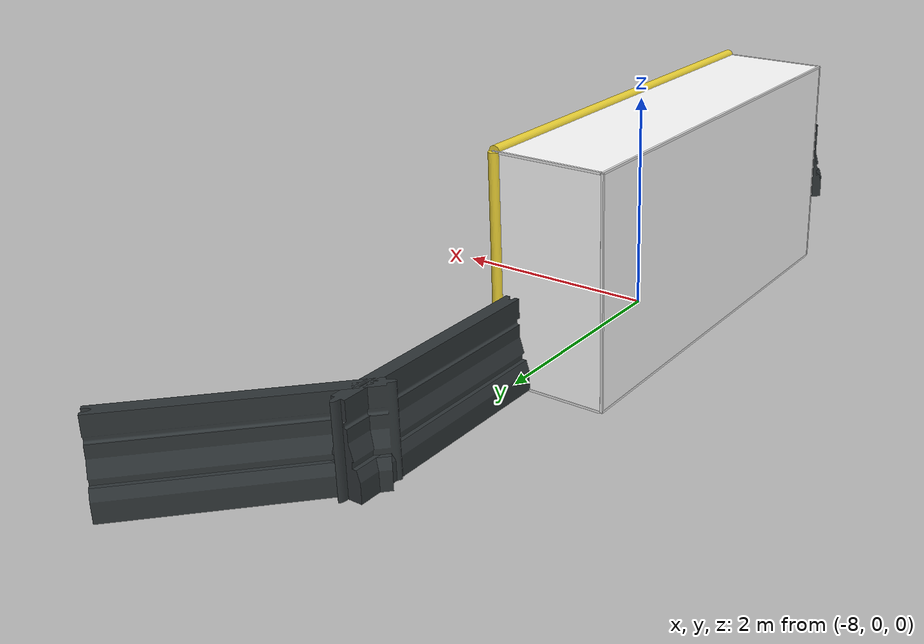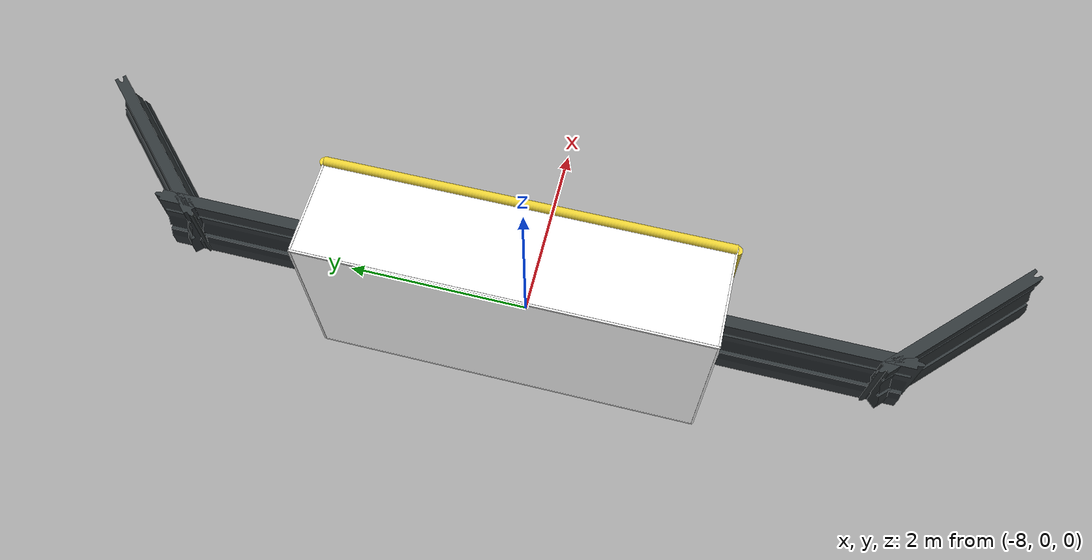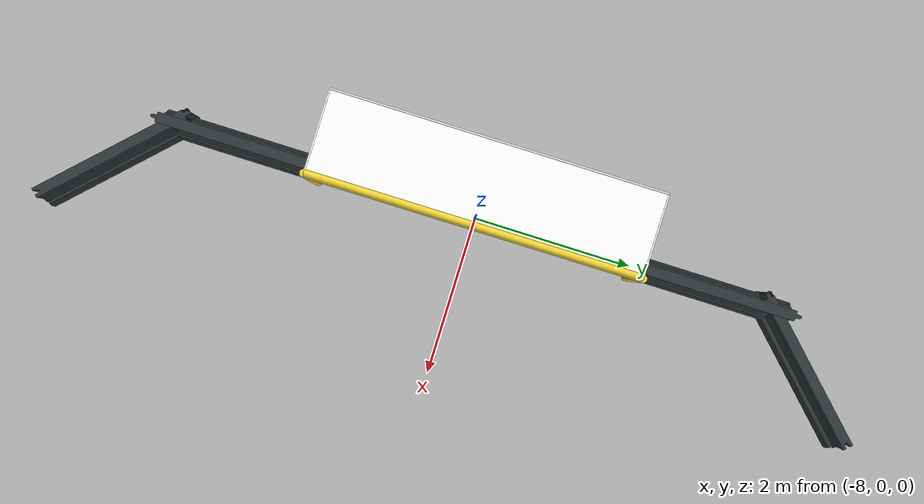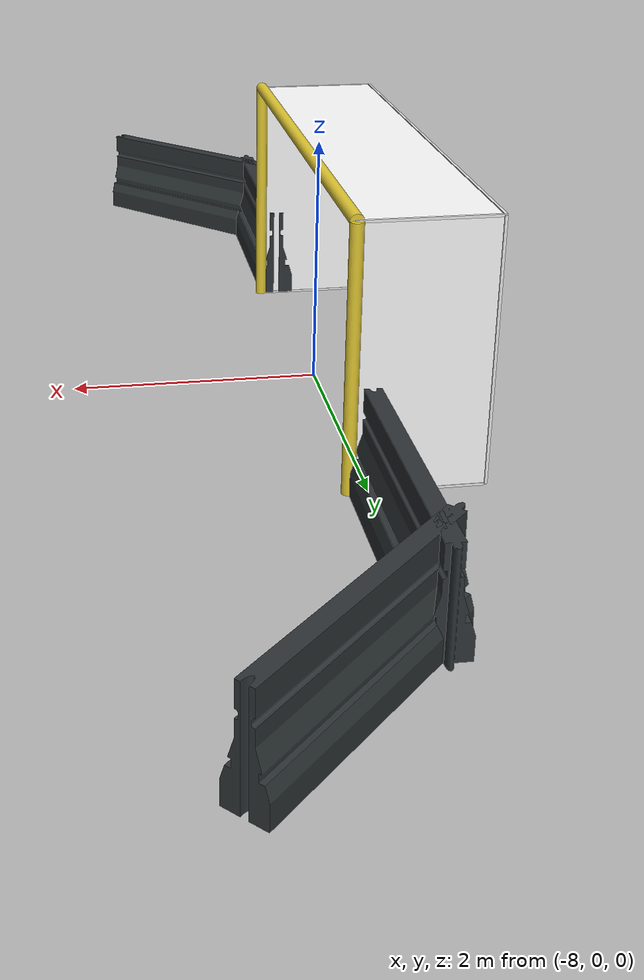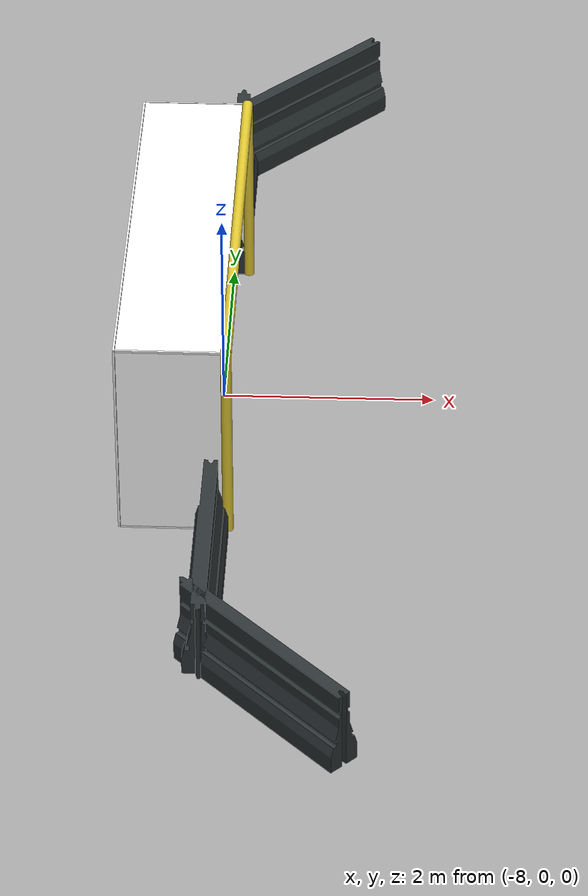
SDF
<sdf version="1.7">
 <model name="Soccer_Field_walls">
  <model name="Barrier_clone">
   <link name="link">
    <inertial>
     <mass>1</mass>
     <inertia><ixx>1</ixx><ixy>0</ixy><ixz>0</ixz><iyy>1</iyy><iyz>0</iyz><izz>1</izz></inertia>
    </inertial>
    <visual name="visual">
     <geometry>
      <mesh>
       <uri>model://drc_practice_orange_jersey_barrier/meshes/jersey_barrier.dae</uri>
       <scale>0.5 1.15 0.75</scale>
      </mesh>
     </geometry>
     <material>
      <shader type="pixel"><normal_map>__default__</normal_map></shader>
      <script><name>ModelPreview_8::link::visual_MATERIAL_</name><uri>__default__</uri></script>
      <ambient>0.533 0.541 0.522 1</ambient>
      <diffuse>0.18 0.204 0.212 1</diffuse>
      <specular>0 0 0 1</specular>
      <emissive>0 0 0 1</emissive>
     </material>
    </visual>
    <collision name="collision">
     <geometry>
      <mesh>
       <uri>/home/llyttle/.gazebo/models/drc_practice_orange_jersey_barrier/meshes/jersey_barrier.dae</uri>
       <scale>0.5 1.15 0.75</scale>
      </mesh>
     </geometry>
     <surface>
      <friction>
       <ode><mu>1</mu><mu2>1</mu2><fdir1>0 0 0</fdir1><slip1>0</slip1><slip2>0</slip2></ode>
       <torsional>
        <coefficient>1</coefficient>
        <patch_radius>0</patch_radius>
        <surface_radius>0</surface_radius>
        <use_patch_radius>1</use_patch_radius>
        <ode><slip>0</slip></ode>
       </torsional>
      </friction>
      <bounce><restitution_coefficient>0</restitution_coefficient><threshold>1e+06</threshold></bounce>
      <contact>
       <collide_without_contact>0</collide_without_contact>
       <collide_without_contact_bitmask>1</collide_without_contact_bitmask>
       <collide_bitmask>1</collide_bitmask>
       <ode>
        <soft_cfm>0</soft_cfm>
        <soft_erp>0.2</soft_erp>
        <kp>1e+13</kp>
        <kd>1</kd>
        <max_vel>0.01</max_vel>
        <min_depth>0</min_depth>
       </ode>
       <bullet>
        <split_impulse>1</split_impulse>
        <split_impulse_penetration_threshold>-0.01</split_impulse_penetration_threshold>
        <soft_cfm>0</soft_cfm>
        <soft_erp>0.2</soft_erp>
        <kp>1e+13</kp>
        <kd>1</kd>
       </bullet>
      </contact>
     </surface>
    </collision>
   </link>
   <static>1</static>
   <pose>-8.00458 -2.99605 0 0 -0 0</pose>
  </model>
  <model name="Barrier_clone_clone_0">
   <link name="link">
    <inertial>
     <mass>1</mass>
     <inertia><ixx>1</ixx><ixy>0</ixy><ixz>0</ixz><iyy>1</iyy><iyz>0</iyz><izz>1</izz></inertia>
    </inertial>
    <visual name="visual">
     <geometry>
      <mesh>
       <uri>model://drc_practice_orange_jersey_barrier/meshes/jersey_barrier.dae</uri>
       <scale>0.5 1.15 0.75</scale>
      </mesh>
     </geometry>
     <material>
      <shader type="pixel"><normal_map>__default__</normal_map></shader>
      <script><name>ModelPreview_8::link::visual_MATERIAL_</name><uri>__default__</uri></script>
      <ambient>0.533 0.541 0.522 1</ambient>
      <diffuse>0.18 0.204 0.212 1</diffuse>
      <specular>0 0 0 1</specular>
      <emissive>0 0 0 1</emissive>
     </material>
    </visual>
    <collision name="collision">
     <geometry>
      <mesh>
       <uri>/home/llyttle/.gazebo/models/drc_practice_orange_jersey_barrier/meshes/jersey_barrier.dae</uri>
       <scale>0.5 1.15 0.75</scale>
      </mesh>
     </geometry>
     <surface>
      <friction>
       <ode><mu>1</mu><mu2>1</mu2><fdir1>0 0 0</fdir1><slip1>0</slip1><slip2>0</slip2></ode>
       <torsional>
        <coefficient>1</coefficient>
        <patch_radius>0</patch_radius>
        <surface_radius>0</surface_radius>
        <use_patch_radius>1</use_patch_radius>
        <ode><slip>0</slip></ode>
       </torsional>
      </friction>
      <bounce><restitution_coefficient>0</restitution_coefficient><threshold>1e+06</threshold></bounce>
      <contact>
       <collide_without_contact>0</collide_without_contact>
       <collide_without_contact_bitmask>1</collide_without_contact_bitmask>
       <collide_bitmask>1</collide_bitmask>
       <ode>
        <soft_cfm>0</soft_cfm>
        <soft_erp>0.2</soft_erp>
        <kp>1e+13</kp>
        <kd>1</kd>
        <max_vel>0.01</max_vel>
        <min_depth>0</min_depth>
       </ode>
       <bullet>
        <split_impulse>1</split_impulse>
        <split_impulse_penetration_threshold>-0.01</split_impulse_penetration_threshold>
        <soft_cfm>0</soft_cfm>
        <soft_erp>0.2</soft_erp>
        <kp>1e+13</kp>
        <kd>1</kd>
       </bullet>
      </contact>
     </surface>
    </collision>
   </link>
   <static>1</static>
   <pose>-8.00458 3.00395 0 0 0 -3.14159</pose>
  </model>
  <model name="Barrier_clone_clone_clone_14">
   <link name="link">
    <inertial>
     <mass>1</mass>
     <inertia><ixx>1</ixx><ixy>0</ixy><ixz>0</ixz><iyy>1</iyy><iyz>0</iyz><izz>1</izz></inertia>
    </inertial>
    <visual name="visual">
     <geometry>
      <mesh>
       <uri>model://drc_practice_orange_jersey_barrier/meshes/jersey_barrier.dae</uri>
       <scale>0.5 1.15 0.75</scale>
      </mesh>
     </geometry>
     <material>
      <shader type="pixel"><normal_map>__default__</normal_map></shader>
      <script><name>ModelPreview_8::link::visual_MATERIAL_</name><uri>__default__</uri></script>
      <ambient>0.533 0.541 0.522 1</ambient>
      <diffuse>0.18 0.204 0.212 1</diffuse>
      <specular>0 0 0 1</specular>
      <emissive>0 0 0 1</emissive>
     </material>
    </visual>
    <collision name="collision">
     <geometry>
      <mesh>
       <uri>/home/llyttle/.gazebo/models/drc_practice_orange_jersey_barrier/meshes/jersey_barrier.dae</uri>
       <scale>0.5 1.15 0.75</scale>
      </mesh>
     </geometry>
     <surface>
      <friction>
       <ode><mu>1</mu><mu2>1</mu2><fdir1>0 0 0</fdir1><slip1>0</slip1><slip2>0</slip2></ode>
       <torsional>
        <coefficient>1</coefficient>
        <patch_radius>0</patch_radius>
        <surface_radius>0</surface_radius>
        <use_patch_radius>1</use_patch_radius>
        <ode><slip>0</slip></ode>
       </torsional>
      </friction>
      <bounce><restitution_coefficient>0</restitution_coefficient><threshold>1e+06</threshold></bounce>
      <contact>
       <collide_without_contact>0</collide_without_contact>
       <collide_without_contact_bitmask>1</collide_without_contact_bitmask>
       <collide_bitmask>1</collide_bitmask>
       <ode>
        <soft_cfm>0</soft_cfm>
        <soft_erp>0.2</soft_erp>
        <kp>1e+13</kp>
        <kd>1</kd>
        <max_vel>0.01</max_vel>
        <min_depth>0</min_depth>
       </ode>
       <bullet>
        <split_impulse>1</split_impulse>
        <split_impulse_penetration_threshold>-0.01</split_impulse_penetration_threshold>
        <soft_cfm>0</soft_cfm>
        <soft_erp>0.2</soft_erp>
        <kp>1e+13</kp>
        <kd>1</kd>
       </bullet>
      </contact>
     </surface>
    </collision>
   </link>
   <static>1</static>
   <pose>-7.39817 4.37062 0 0 0 -0.785402</pose>
  </model>
  <model name="Barrier_clone_clone_clone_15">
   <link name="link">
    <inertial>
     <mass>1</mass>
     <inertia><ixx>1</ixx><ixy>0</ixy><ixz>0</ixz><iyy>1</iyy><iyz>0</iyz><izz>1</izz></inertia>
    </inertial>
    <visual name="visual">
     <geometry>
      <mesh>
       <uri>model://drc_practice_orange_jersey_barrier/meshes/jersey_barrier.dae</uri>
       <scale>0.5 1.15 0.75</scale>
      </mesh>
     </geometry>
     <material>
      <shader type="pixel"><normal_map>__default__</normal_map></shader>
      <script><name>ModelPreview_8::link::visual_MATERIAL_</name><uri>__default__</uri></script>
      <ambient>0.533 0.541 0.522 1</ambient>
      <diffuse>0.18 0.204 0.212 1</diffuse>
      <specular>0 0 0 1</specular>
      <emissive>0 0 0 1</emissive>
     </material>
    </visual>
    <collision name="collision">
     <geometry>
      <mesh>
       <uri>/home/llyttle/.gazebo/models/drc_practice_orange_jersey_barrier/meshes/jersey_barrier.dae</uri>
       <scale>0.5 1.15 0.75</scale>
      </mesh>
     </geometry>
     <surface>
      <friction>
       <ode><mu>1</mu><mu2>1</mu2><fdir1>0 0 0</fdir1><slip1>0</slip1><slip2>0</slip2></ode>
       <torsional>
        <coefficient>1</coefficient>
        <patch_radius>0</patch_radius>
        <surface_radius>0</surface_radius>
        <use_patch_radius>1</use_patch_radius>
        <ode><slip>0</slip></ode>
       </torsional>
      </friction>
      <bounce><restitution_coefficient>0</restitution_coefficient><threshold>1e+06</threshold></bounce>
      <contact>
       <collide_without_contact>0</collide_without_contact>
       <collide_without_contact_bitmask>1</collide_without_contact_bitmask>
       <collide_bitmask>1</collide_bitmask>
       <ode>
        <soft_cfm>0</soft_cfm>
        <soft_erp>0.2</soft_erp>
        <kp>1e+13</kp>
        <kd>1</kd>
        <max_vel>0.01</max_vel>
        <min_depth>0</min_depth>
       </ode>
       <bullet>
        <split_impulse>1</split_impulse>
        <split_impulse_penetration_threshold>-0.01</split_impulse_penetration_threshold>
        <soft_cfm>0</soft_cfm>
        <soft_erp>0.2</soft_erp>
        <kp>1e+13</kp>
        <kd>1</kd>
       </bullet>
      </contact>
     </surface>
    </collision>
   </link>
   <static>1</static>
   <pose>-7.41593 -4.4198 0 0 0 -2.3562</pose>
  </model>
  <model name="Goal_clone">
   <link name="left_post">
    <pose>-0.086533 2 1 0 -0 0</pose>
    <inertial>
     <mass>1</mass>
     <inertia><ixx>1</ixx><ixy>0</ixy><ixz>0</ixz><iyy>1</iyy><iyz>0</iyz><izz>1</izz></inertia>
    </inertial>
    <visual name="visual">
     <geometry><cylinder><radius>0.05</radius><length>2</length></cylinder></geometry>
     <material>
      <script><uri>file://media/materials/scripts/gazebo.material</uri><name>Gazebo/ZincYellow</name></script>
      <shader type="pixel"><normal_map>__default__</normal_map></shader>
      <ambient>0.973 0.953 0.208 1</ambient>
      <diffuse>0.973 0.953 0.208 1</diffuse>
      <specular>0.973 0.953 0.208 1</specular>
      <emissive>0 0 0 1</emissive>
     </material>
    </visual>
    <collision name="collision">
     <geometry><cylinder><radius>0.05</radius><length>2</length></cylinder></geometry>
     <surface>
      <friction>
       <ode><mu>1</mu><mu2>1</mu2><fdir1>0 0 0</fdir1><slip1>0</slip1><slip2>0</slip2></ode>
       <torsional>
        <coefficient>1</coefficient>
        <patch_radius>0</patch_radius>
        <surface_radius>0</surface_radius>
        <use_patch_radius>1</use_patch_radius>
        <ode><slip>0</slip></ode>
       </torsional>
      </friction>
      <bounce><restitution_coefficient>0</restitution_coefficient><threshold>1e+06</threshold></bounce>
      <contact>
       <collide_without_contact>0</collide_without_contact>
       <collide_without_contact_bitmask>1</collide_without_contact_bitmask>
       <collide_bitmask>1</collide_bitmask>
       <ode>
        <soft_cfm>0</soft_cfm>
        <soft_erp>0.2</soft_erp>
        <kp>1e+13</kp>
        <kd>1</kd>
        <max_vel>0.01</max_vel>
        <min_depth>0</min_depth>
       </ode>
       <bullet>
        <split_impulse>1</split_impulse>
        <split_impulse_penetration_threshold>-0.01</split_impulse_penetration_threshold>
        <soft_cfm>0</soft_cfm>
        <soft_erp>0.2</soft_erp>
        <kp>1e+13</kp>
        <kd>1</kd>
       </bullet>
      </contact>
     </surface>
    </collision>
   </link>
   <link name="center_net">
    <pose>0.913467 0 1 0 -0 0</pose>
    <inertial>
     <mass>1</mass>
     <inertia><ixx>1</ixx><ixy>0</ixy><ixz>0</ixz><iyy>1</iyy><iyz>0</iyz><izz>1</izz></inertia>
    </inertial>
    <visual name="visual">
     <geometry><box><size>0.01 4 2</size></box></geometry>
     <material>
      <script>
       <uri>model://robocup09_spl_field/materials/scripts/</uri>
       <uri>model://robocup09_spl_field/materials/textures/</uri>
       <name>RoboCup/Net</name>
      </script>
      <shader type="pixel"><normal_map>__default__</normal_map></shader>
      <ambient>1 1 1 1</ambient>
      <diffuse>1 1 1 1</diffuse>
      <specular>0 0 0 1</specular>
      <emissive>0 0 0 1</emissive>
     </material>
    </visual>
    <collision name="collision">
     <geometry><box><size>0.01 4 2</size></box></geometry>
     <surface>
      <friction>
       <ode><mu>1</mu><mu2>1</mu2><fdir1>0 0 0</fdir1><slip1>0</slip1><slip2>0</slip2></ode>
       <torsional>
        <coefficient>1</coefficient>
        <patch_radius>0</patch_radius>
        <surface_radius>0</surface_radius>
        <use_patch_radius>1</use_patch_radius>
        <ode><slip>0</slip></ode>
       </torsional>
      </friction>
      <bounce><restitution_coefficient>0</restitution_coefficient><threshold>1e+06</threshold></bounce>
      <contact>
       <collide_without_contact>0</collide_without_contact>
       <collide_without_contact_bitmask>1</collide_without_contact_bitmask>
       <collide_bitmask>1</collide_bitmask>
       <ode>
        <soft_cfm>0</soft_cfm>
        <soft_erp>0.2</soft_erp>
        <kp>1e+13</kp>
        <kd>1</kd>
        <max_vel>0.01</max_vel>
        <min_depth>0</min_depth>
       </ode>
       <bullet>
        <split_impulse>1</split_impulse>
        <split_impulse_penetration_threshold>-0.01</split_impulse_penetration_threshold>
        <soft_cfm>0</soft_cfm>
        <soft_erp>0.2</soft_erp>
        <kp>1e+13</kp>
        <kd>1</kd>
       </bullet>
      </contact>
     </surface>
    </collision>
   </link>
   <link name="center_support_horiz_upper">
    <pose>0.913467 0 2 3.14159 1.57079 3.14159</pose>
    <inertial>
     <mass>1</mass>
     <inertia><ixx>1</ixx><ixy>0</ixy><ixz>0</ixz><iyy>1</iyy><iyz>0</iyz><izz>1</izz></inertia>
    </inertial>
    <visual name="visual">
     <geometry><box><size>0.02 4 0.02</size></box></geometry>
     <material>
      <script><uri>file://media/materials/scripts/gazebo.material</uri><name>Gazebo/White</name></script>
      <shader type="pixel"><normal_map>__default__</normal_map></shader>
      <ambient>1 1 1 1</ambient>
      <diffuse>1 1 1 1</diffuse>
      <specular>0 0 0 1</specular>
      <emissive>0 0 0 1</emissive>
     </material>
    </visual>
    <collision name="collision">
     <geometry><box><size>0.02 4 0.02</size></box></geometry>
     <surface>
      <friction>
       <ode><mu>1</mu><mu2>1</mu2><fdir1>0 0 0</fdir1><slip1>0</slip1><slip2>0</slip2></ode>
       <torsional>
        <coefficient>1</coefficient>
        <patch_radius>0</patch_radius>
        <surface_radius>0</surface_radius>
        <use_patch_radius>1</use_patch_radius>
        <ode><slip>0</slip></ode>
       </torsional>
      </friction>
      <bounce><restitution_coefficient>0</restitution_coefficient><threshold>1e+06</threshold></bounce>
      <contact>
       <collide_without_contact>0</collide_without_contact>
       <collide_without_contact_bitmask>1</collide_without_contact_bitmask>
       <collide_bitmask>1</collide_bitmask>
       <ode>
        <soft_cfm>0</soft_cfm>
        <soft_erp>0.2</soft_erp>
        <kp>1e+13</kp>
        <kd>1</kd>
        <max_vel>0.01</max_vel>
        <min_depth>0</min_depth>
       </ode>
       <bullet>
        <split_impulse>1</split_impulse>
        <split_impulse_penetration_threshold>-0.01</split_impulse_penetration_threshold>
        <soft_cfm>0</soft_cfm>
        <soft_erp>0.2</soft_erp>
        <kp>1e+13</kp>
        <kd>1</kd>
       </bullet>
      </contact>
     </surface>
    </collision>
   </link>
   <link name="center_support_horiz_upper_clone">
    <pose>0.913467 0 0 3.14159 1.57079 3.14159</pose>
    <inertial>
     <mass>1</mass>
     <inertia><ixx>1</ixx><ixy>0</ixy><ixz>0</ixz><iyy>1</iyy><iyz>0</iyz><izz>1</izz></inertia>
    </inertial>
    <visual name="visual">
     <geometry><box><size>0.02 4 0.02</size></box></geometry>
     <material>
      <script><uri>file://media/materials/scripts/gazebo.material</uri><name>Gazebo/White</name></script>
      <shader type="pixel"><normal_map>__default__</normal_map></shader>
      <ambient>1 1 1 1</ambient>
      <diffuse>1 1 1 1</diffuse>
      <specular>0 0 0 1</specular>
      <emissive>0 0 0 1</emissive>
     </material>
    </visual>
    <collision name="collision">
     <geometry><box><size>0.02 4 0.02</size></box></geometry>
     <surface>
      <friction>
       <ode><mu>1</mu><mu2>1</mu2><fdir1>0 0 0</fdir1><slip1>0</slip1><slip2>0</slip2></ode>
       <torsional>
        <coefficient>1</coefficient>
        <patch_radius>0</patch_radius>
        <surface_radius>0</surface_radius>
        <use_patch_radius>1</use_patch_radius>
        <ode><slip>0</slip></ode>
       </torsional>
      </friction>
      <bounce><restitution_coefficient>0</restitution_coefficient><threshold>1e+06</threshold></bounce>
      <contact>
       <collide_without_contact>0</collide_without_contact>
       <collide_without_contact_bitmask>1</collide_without_contact_bitmask>
       <collide_bitmask>1</collide_bitmask>
       <ode>
        <soft_cfm>0</soft_cfm>
        <soft_erp>0.2</soft_erp>
        <kp>1e+13</kp>
        <kd>1</kd>
        <max_vel>0.01</max_vel>
        <min_depth>0</min_depth>
       </ode>
       <bullet>
        <split_impulse>1</split_impulse>
        <split_impulse_penetration_threshold>-0.01</split_impulse_penetration_threshold>
        <soft_cfm>0</soft_cfm>
        <soft_erp>0.2</soft_erp>
        <kp>1e+13</kp>
        <kd>1</kd>
       </bullet>
      </contact>
     </surface>
    </collision>
   </link>
   <link name="crossbar">
    <pose>-0.086533 0 2 1.56998 1.57 -9e-06</pose>
    <inertial>
     <mass>1</mass>
     <inertia><ixx>1</ixx><ixy>0</ixy><ixz>0</ixz><iyy>1</iyy><iyz>0</iyz><izz>1</izz></inertia>
    </inertial>
    <visual name="visual">
     <geometry><cylinder><radius>0.05</radius><length>4</length></cylinder></geometry>
     <material>
      <script><uri>file://media/materials/scripts/gazebo.material</uri><name>Gazebo/ZincYellow</name></script>
      <shader type="pixel"><normal_map>__default__</normal_map></shader>
      <ambient>0.973 0.973 0.973 1</ambient>
      <diffuse>0.973 0.973 0.973 1</diffuse>
      <specular>0.973 0.973 0.973 1</specular>
      <emissive>0 0 0 1</emissive>
     </material>
    </visual>
    <collision name="collision">
     <geometry><cylinder><radius>0.05</radius><length>4</length></cylinder></geometry>
     <surface>
      <friction>
       <ode><mu>1</mu><mu2>1</mu2><fdir1>0 0 0</fdir1><slip1>0</slip1><slip2>0</slip2></ode>
       <torsional>
        <coefficient>1</coefficient>
        <patch_radius>0</patch_radius>
        <surface_radius>0</surface_radius>
        <use_patch_radius>1</use_patch_radius>
        <ode><slip>0</slip></ode>
       </torsional>
      </friction>
      <bounce><restitution_coefficient>0</restitution_coefficient><threshold>1e+06</threshold></bounce>
      <contact>
       <collide_without_contact>0</collide_without_contact>
       <collide_without_contact_bitmask>1</collide_without_contact_bitmask>
       <collide_bitmask>1</collide_bitmask>
       <ode>
        <soft_cfm>0</soft_cfm>
        <soft_erp>0.2</soft_erp>
        <kp>1e+13</kp>
        <kd>1</kd>
        <max_vel>0.01</max_vel>
        <min_depth>0</min_depth>
       </ode>
       <bullet>
        <split_impulse>1</split_impulse>
        <split_impulse_penetration_threshold>-0.01</split_impulse_penetration_threshold>
        <soft_cfm>0</soft_cfm>
        <soft_erp>0.2</soft_erp>
        <kp>1e+13</kp>
        <kd>1</kd>
       </bullet>
      </contact>
     </surface>
    </collision>
   </link>
   <link name="left_support_horiz_lower">
    <pose>0.4 2 0 0 -0 0</pose>
    <inertial>
     <mass>1</mass>
     <inertia><ixx>1</ixx><ixy>0</ixy><ixz>0</ixz><iyy>1</iyy><iyz>0</iyz><izz>1</izz></inertia>
    </inertial>
    <visual name="visual">
     <geometry><box><size>1 0.02 0.02</size></box></geometry>
     <material>
      <script><uri>file://media/materials/scripts/gazebo.material</uri><name>Gazebo/White</name></script>
      <shader type="pixel"><normal_map>__default__</normal_map></shader>
      <ambient>1 1 1 1</ambient>
      <diffuse>1 1 1 1</diffuse>
      <specular>0 0 0 1</specular>
      <emissive>0 0 0 1</emissive>
     </material>
    </visual>
    <collision name="collision">
     <geometry><box><size>1 0.02 0.02</size></box></geometry>
     <surface>
      <friction>
       <ode><mu>1</mu><mu2>1</mu2><fdir1>0 0 0</fdir1><slip1>0</slip1><slip2>0</slip2></ode>
       <torsional>
        <coefficient>1</coefficient>
        <patch_radius>0</patch_radius>
        <surface_radius>0</surface_radius>
        <use_patch_radius>1</use_patch_radius>
        <ode><slip>0</slip></ode>
       </torsional>
      </friction>
      <bounce><restitution_coefficient>0</restitution_coefficient><threshold>1e+06</threshold></bounce>
      <contact>
       <collide_without_contact>0</collide_without_contact>
       <collide_without_contact_bitmask>1</collide_without_contact_bitmask>
       <collide_bitmask>1</collide_bitmask>
       <ode>
        <soft_cfm>0</soft_cfm>
        <soft_erp>0.2</soft_erp>
        <kp>1e+13</kp>
        <kd>1</kd>
        <max_vel>0.01</max_vel>
        <min_depth>0</min_depth>
       </ode>
       <bullet>
        <split_impulse>1</split_impulse>
        <split_impulse_penetration_threshold>-0.01</split_impulse_penetration_threshold>
        <soft_cfm>0</soft_cfm>
        <soft_erp>0.2</soft_erp>
        <kp>1e+13</kp>
        <kd>1</kd>
       </bullet>
      </contact>
     </surface>
    </collision>
   </link>
   <link name="left_support_horiz_lower_clone">
    <pose>0.4 2 2 0 -0 0</pose>
    <inertial>
     <mass>1</mass>
     <inertia><ixx>1</ixx><ixy>0</ixy><ixz>0</ixz><iyy>1</iyy><iyz>0</iyz><izz>1</izz></inertia>
    </inertial>
    <visual name="visual">
     <geometry><box><size>1 0.02 0.02</size></box></geometry>
     <material>
      <script><uri>file://media/materials/scripts/gazebo.material</uri><name>Gazebo/White</name></script>
      <shader type="pixel"><normal_map>__default__</normal_map></shader>
      <ambient>1 1 1 1</ambient>
      <diffuse>1 1 1 1</diffuse>
      <specular>0 0 0 1</specular>
      <emissive>0 0 0 1</emissive>
     </material>
    </visual>
    <collision name="collision">
     <geometry><box><size>1 0.02 0.02</size></box></geometry>
     <surface>
      <friction>
       <ode><mu>1</mu><mu2>1</mu2><fdir1>0 0 0</fdir1><slip1>0</slip1><slip2>0</slip2></ode>
       <torsional>
        <coefficient>1</coefficient>
        <patch_radius>0</patch_radius>
        <surface_radius>0</surface_radius>
        <use_patch_radius>1</use_patch_radius>
        <ode><slip>0</slip></ode>
       </torsional>
      </friction>
      <bounce><restitution_coefficient>0</restitution_coefficient><threshold>1e+06</threshold></bounce>
      <contact>
       <collide_without_contact>0</collide_without_contact>
       <collide_without_contact_bitmask>1</collide_without_contact_bitmask>
       <collide_bitmask>1</collide_bitmask>
       <ode>
        <soft_cfm>0</soft_cfm>
        <soft_erp>0.2</soft_erp>
        <kp>1e+13</kp>
        <kd>1</kd>
        <max_vel>0.01</max_vel>
        <min_depth>0</min_depth>
       </ode>
       <bullet>
        <split_impulse>1</split_impulse>
        <split_impulse_penetration_threshold>-0.01</split_impulse_penetration_threshold>
        <soft_cfm>0</soft_cfm>
        <soft_erp>0.2</soft_erp>
        <kp>1e+13</kp>
        <kd>1</kd>
       </bullet>
      </contact>
     </surface>
    </collision>
   </link>
   <link name="left_support_horiz_lower_clone_0">
    <pose>0.4 -2 2 0 -0 0</pose>
    <inertial>
     <mass>1</mass>
     <inertia><ixx>1</ixx><ixy>0</ixy><ixz>0</ixz><iyy>1</iyy><iyz>0</iyz><izz>1</izz></inertia>
    </inertial>
    <visual name="visual">
     <geometry><box><size>1 0.02 0.02</size></box></geometry>
     <material>
      <script><uri>file://media/materials/scripts/gazebo.material</uri><name>Gazebo/White</name></script>
      <shader type="pixel"><normal_map>__default__</normal_map></shader>
      <ambient>1 1 1 1</ambient>
      <diffuse>1 1 1 1</diffuse>
      <specular>0 0 0 1</specular>
      <emissive>0 0 0 1</emissive>
     </material>
    </visual>
    <collision name="collision">
     <geometry><box><size>1 0.02 0.02</size></box></geometry>
     <surface>
      <friction>
       <ode><mu>1</mu><mu2>1</mu2><fdir1>0 0 0</fdir1><slip1>0</slip1><slip2>0</slip2></ode>
       <torsional>
        <coefficient>1</coefficient>
        <patch_radius>0</patch_radius>
        <surface_radius>0</surface_radius>
        <use_patch_radius>1</use_patch_radius>
        <ode><slip>0</slip></ode>
       </torsional>
      </friction>
      <bounce><restitution_coefficient>0</restitution_coefficient><threshold>1e+06</threshold></bounce>
      <contact>
       <collide_without_contact>0</collide_without_contact>
       <collide_without_contact_bitmask>1</collide_without_contact_bitmask>
       <collide_bitmask>1</collide_bitmask>
       <ode>
        <soft_cfm>0</soft_cfm>
        <soft_erp>0.2</soft_erp>
        <kp>1e+13</kp>
        <kd>1</kd>
        <max_vel>0.01</max_vel>
        <min_depth>0</min_depth>
       </ode>
       <bullet>
        <split_impulse>1</split_impulse>
        <split_impulse_penetration_threshold>-0.01</split_impulse_penetration_threshold>
        <soft_cfm>0</soft_cfm>
        <soft_erp>0.2</soft_erp>
        <kp>1e+13</kp>
        <kd>1</kd>
       </bullet>
      </contact>
     </surface>
    </collision>
   </link>
   <link name="left_support_horiz_lower_clone_1">
    <pose>0.4 -2 0 0 -0 0</pose>
    <inertial>
     <mass>1</mass>
     <inertia><ixx>1</ixx><ixy>0</ixy><ixz>0</ixz><iyy>1</iyy><iyz>0</iyz><izz>1</izz></inertia>
    </inertial>
    <visual name="visual">
     <geometry><box><size>1 0.02 0.02</size></box></geometry>
     <material>
      <script><uri>file://media/materials/scripts/gazebo.material</uri><name>Gazebo/White</name></script>
      <shader type="pixel"><normal_map>__default__</normal_map></shader>
      <ambient>1 1 1 1</ambient>
      <diffuse>1 1 1 1</diffuse>
      <specular>0 0 0 1</specular>
      <emissive>0 0 0 1</emissive>
     </material>
    </visual>
    <collision name="collision">
     <geometry><box><size>1 0.02 0.02</size></box></geometry>
     <surface>
      <friction>
       <ode><mu>1</mu><mu2>1</mu2><fdir1>0 0 0</fdir1><slip1>0</slip1><slip2>0</slip2></ode>
       <torsional>
        <coefficient>1</coefficient>
        <patch_radius>0</patch_radius>
        <surface_radius>0</surface_radius>
        <use_patch_radius>1</use_patch_radius>
        <ode><slip>0</slip></ode>
       </torsional>
      </friction>
      <bounce><restitution_coefficient>0</restitution_coefficient><threshold>1e+06</threshold></bounce>
      <contact>
       <collide_without_contact>0</collide_without_contact>
       <collide_without_contact_bitmask>1</collide_without_contact_bitmask>
       <collide_bitmask>1</collide_bitmask>
       <ode>
        <soft_cfm>0</soft_cfm>
        <soft_erp>0.2</soft_erp>
        <kp>1e+13</kp>
        <kd>1</kd>
        <max_vel>0.01</max_vel>
        <min_depth>0</min_depth>
       </ode>
       <bullet>
        <split_impulse>1</split_impulse>
        <split_impulse_penetration_threshold>-0.01</split_impulse_penetration_threshold>
        <soft_cfm>0</soft_cfm>
        <soft_erp>0.2</soft_erp>
        <kp>1e+13</kp>
        <kd>1</kd>
       </bullet>
      </contact>
     </surface>
    </collision>
   </link>
   <link name="right_net">
    <pose>0.4 -2 1 0 -0 0</pose>
    <inertial>
     <mass>1</mass>
     <inertia><ixx>1</ixx><ixy>0</ixy><ixz>0</ixz><iyy>1</iyy><iyz>0</iyz><izz>1</izz></inertia>
    </inertial>
    <visual name="visual">
     <geometry><box><size>1 0.01 2</size></box></geometry>
     <material>
      <script>
       <uri>model://robocup09_spl_field/materials/scripts/</uri>
       <uri>model://robocup09_spl_field/materials/textures/</uri>
       <name>RoboCup/Net</name>
      </script>
      <shader type="pixel"><normal_map>__default__</normal_map></shader>
      <ambient>1 1 1 1</ambient>
      <diffuse>1 1 1 1</diffuse>
      <specular>0 0 0 1</specular>
      <emissive>0 0 0 1</emissive>
     </material>
    </visual>
    <collision name="collision">
     <geometry><box><size>1 0.01 2</size></box></geometry>
     <surface>
      <friction>
       <ode><mu>1</mu><mu2>1</mu2><fdir1>0 0 0</fdir1><slip1>0</slip1><slip2>0</slip2></ode>
       <torsional>
        <coefficient>1</coefficient>
        <patch_radius>0</patch_radius>
        <surface_radius>0</surface_radius>
        <use_patch_radius>1</use_patch_radius>
        <ode><slip>0</slip></ode>
       </torsional>
      </friction>
      <bounce><restitution_coefficient>0</restitution_coefficient><threshold>1e+06</threshold></bounce>
      <contact>
       <collide_without_contact>0</collide_without_contact>
       <collide_without_contact_bitmask>1</collide_without_contact_bitmask>
       <collide_bitmask>1</collide_bitmask>
       <ode>
        <soft_cfm>0</soft_cfm>
        <soft_erp>0.2</soft_erp>
        <kp>1e+13</kp>
        <kd>1</kd>
        <max_vel>0.01</max_vel>
        <min_depth>0</min_depth>
       </ode>
       <bullet>
        <split_impulse>1</split_impulse>
        <split_impulse_penetration_threshold>-0.01</split_impulse_penetration_threshold>
        <soft_cfm>0</soft_cfm>
        <soft_erp>0.2</soft_erp>
        <kp>1e+13</kp>
        <kd>1</kd>
       </bullet>
      </contact>
     </surface>
    </collision>
   </link>
   <link name="right_net_clone">
    <pose>0.4 2 1 0 -0 0</pose>
    <inertial>
     <mass>1</mass>
     <inertia><ixx>1</ixx><ixy>0</ixy><ixz>0</ixz><iyy>1</iyy><iyz>0</iyz><izz>1</izz></inertia>
    </inertial>
    <visual name="visual">
     <geometry><box><size>1 0.01 2</size></box></geometry>
     <material>
      <script>
       <uri>model://robocup09_spl_field/materials/scripts/</uri>
       <uri>model://robocup09_spl_field/materials/textures/</uri>
       <name>RoboCup/Net</name>
      </script>
      <shader type="pixel"><normal_map>__default__</normal_map></shader>
      <ambient>1 1 1 1</ambient>
      <diffuse>1 1 1 1</diffuse>
      <specular>0 0 0 1</specular>
      <emissive>0 0 0 1</emissive>
     </material>
    </visual>
    <collision name="collision">
     <geometry><box><size>1 0.01 2</size></box></geometry>
     <surface>
      <friction>
       <ode><mu>1</mu><mu2>1</mu2><fdir1>0 0 0</fdir1><slip1>0</slip1><slip2>0</slip2></ode>
       <torsional>
        <coefficient>1</coefficient>
        <patch_radius>0</patch_radius>
        <surface_radius>0</surface_radius>
        <use_patch_radius>1</use_patch_radius>
        <ode><slip>0</slip></ode>
       </torsional>
      </friction>
      <bounce><restitution_coefficient>0</restitution_coefficient><threshold>1e+06</threshold></bounce>
      <contact>
       <collide_without_contact>0</collide_without_contact>
       <collide_without_contact_bitmask>1</collide_without_contact_bitmask>
       <collide_bitmask>1</collide_bitmask>
       <ode>
        <soft_cfm>0</soft_cfm>
        <soft_erp>0.2</soft_erp>
        <kp>1e+13</kp>
        <kd>1</kd>
        <max_vel>0.01</max_vel>
        <min_depth>0</min_depth>
       </ode>
       <bullet>
        <split_impulse>1</split_impulse>
        <split_impulse_penetration_threshold>-0.01</split_impulse_penetration_threshold>
        <soft_cfm>0</soft_cfm>
        <soft_erp>0.2</soft_erp>
        <kp>1e+13</kp>
        <kd>1</kd>
       </bullet>
      </contact>
     </surface>
    </collision>
   </link>
   <link name="right_net_clone_0">
    <pose>0.4 0 2 -1.5708 0 0</pose>
    <inertial>
     <mass>1</mass>
     <inertia><ixx>1</ixx><ixy>0</ixy><ixz>0</ixz><iyy>1</iyy><iyz>0</iyz><izz>1</izz></inertia>
    </inertial>
    <visual name="visual">
     <geometry><box><size>1 0.01 4</size></box></geometry>
     <material>
      <script>
       <uri>model://robocup09_spl_field/materials/scripts/</uri>
       <uri>model://robocup09_spl_field/materials/textures/</uri>
       <name>RoboCup/Net</name>
      </script>
      <shader type="pixel"><normal_map>__default__</normal_map></shader>
      <ambient>1 1 1 1</ambient>
      <diffuse>1 1 1 1</diffuse>
      <specular>0 0 0 1</specular>
      <emissive>0 0 0 1</emissive>
     </material>
    </visual>
    <collision name="collision">
     <geometry><box><size>1 0.01 4</size></box></geometry>
     <surface>
      <friction>
       <ode><mu>1</mu><mu2>1</mu2><fdir1>0 0 0</fdir1><slip1>0</slip1><slip2>0</slip2></ode>
       <torsional>
        <coefficient>1</coefficient>
        <patch_radius>0</patch_radius>
        <surface_radius>0</surface_radius>
        <use_patch_radius>1</use_patch_radius>
        <ode><slip>0</slip></ode>
       </torsional>
      </friction>
      <bounce><restitution_coefficient>0</restitution_coefficient><threshold>1e+06</threshold></bounce>
      <contact>
       <collide_without_contact>0</collide_without_contact>
       <collide_without_contact_bitmask>1</collide_without_contact_bitmask>
       <collide_bitmask>1</collide_bitmask>
       <ode>
        <soft_cfm>0</soft_cfm>
        <soft_erp>0.2</soft_erp>
        <kp>1e+13</kp>
        <kd>1</kd>
        <max_vel>0.01</max_vel>
        <min_depth>0</min_depth>
       </ode>
       <bullet>
        <split_impulse>1</split_impulse>
        <split_impulse_penetration_threshold>-0.01</split_impulse_penetration_threshold>
        <soft_cfm>0</soft_cfm>
        <soft_erp>0.2</soft_erp>
        <kp>1e+13</kp>
        <kd>1</kd>
       </bullet>
      </contact>
     </surface>
    </collision>
   </link>
   <link name="right_post">
    <pose>-0.086533 -2 1 0 -0 0</pose>
    <inertial>
     <mass>1</mass>
     <inertia><ixx>1</ixx><ixy>0</ixy><ixz>0</ixz><iyy>1</iyy><iyz>0</iyz><izz>1</izz></inertia>
    </inertial>
    <visual name="visual">
     <geometry><cylinder><radius>0.05</radius><length>2</length></cylinder></geometry>
     <material>
      <script><uri>file://media/materials/scripts/gazebo.material</uri><name>Gazebo/ZincYellow</name></script>
      <shader type="pixel"><normal_map>__default__</normal_map></shader>
      <ambient>0.973 0.953 0.208 1</ambient>
      <diffuse>0.973 0.953 0.208 1</diffuse>
      <specular>0.973 0.953 0.208 1</specular>
      <emissive>0 0 0 1</emissive>
     </material>
    </visual>
    <collision name="collision">
     <geometry><cylinder><radius>0.05</radius><length>2</length></cylinder></geometry>
     <surface>
      <friction>
       <ode><mu>1</mu><mu2>1</mu2><fdir1>0 0 0</fdir1><slip1>0</slip1><slip2>0</slip2></ode>
       <torsional>
        <coefficient>1</coefficient>
        <patch_radius>0</patch_radius>
        <surface_radius>0</surface_radius>
        <use_patch_radius>1</use_patch_radius>
        <ode><slip>0</slip></ode>
       </torsional>
      </friction>
      <bounce><restitution_coefficient>0</restitution_coefficient><threshold>1e+06</threshold></bounce>
      <contact>
       <collide_without_contact>0</collide_without_contact>
       <collide_without_contact_bitmask>1</collide_without_contact_bitmask>
       <collide_bitmask>1</collide_bitmask>
       <ode>
        <soft_cfm>0</soft_cfm>
        <soft_erp>0.2</soft_erp>
        <kp>1e+13</kp>
        <kd>1</kd>
        <max_vel>0.01</max_vel>
        <min_depth>0</min_depth>
       </ode>
       <bullet>
        <split_impulse>1</split_impulse>
        <split_impulse_penetration_threshold>-0.01</split_impulse_penetration_threshold>
        <soft_cfm>0</soft_cfm>
        <soft_erp>0.2</soft_erp>
        <kp>1e+13</kp>
        <kd>1</kd>
       </bullet>
      </contact>
     </surface>
    </collision>
   </link>
   <link name="right_support_vertical">
    <pose>0.913467 -2 1 3.14159 1.57079 3.14159</pose>
    <inertial>
     <mass>1</mass>
     <inertia><ixx>1</ixx><ixy>0</ixy><ixz>0</ixz><iyy>1</iyy><iyz>0</iyz><izz>1</izz></inertia>
    </inertial>
    <visual name="visual">
     <geometry><box><size>2 0.02 0.02</size></box></geometry>
     <material>
      <script><uri>file://media/materials/scripts/gazebo.material</uri><name>Gazebo/White</name></script>
      <shader type="pixel"><normal_map>__default__</normal_map></shader>
      <ambient>1 1 1 1</ambient>
      <diffuse>1 1 1 1</diffuse>
      <specular>0 0 0 1</specular>
      <emissive>0 0 0 1</emissive>
     </material>
    </visual>
    <collision name="collision">
     <geometry><box><size>2 0.02 0.02</size></box></geometry>
     <surface>
      <friction>
       <ode><mu>1</mu><mu2>1</mu2><fdir1>0 0 0</fdir1><slip1>0</slip1><slip2>0</slip2></ode>
       <torsional>
        <coefficient>1</coefficient>
        <patch_radius>0</patch_radius>
        <surface_radius>0</surface_radius>
        <use_patch_radius>1</use_patch_radius>
        <ode><slip>0</slip></ode>
       </torsional>
      </friction>
      <bounce><restitution_coefficient>0</restitution_coefficient><threshold>1e+06</threshold></bounce>
      <contact>
       <collide_without_contact>0</collide_without_contact>
       <collide_without_contact_bitmask>1</collide_without_contact_bitmask>
       <collide_bitmask>1</collide_bitmask>
       <ode>
        <soft_cfm>0</soft_cfm>
        <soft_erp>0.2</soft_erp>
        <kp>1e+13</kp>
        <kd>1</kd>
        <max_vel>0.01</max_vel>
        <min_depth>0</min_depth>
       </ode>
       <bullet>
        <split_impulse>1</split_impulse>
        <split_impulse_penetration_threshold>-0.01</split_impulse_penetration_threshold>
        <soft_cfm>0</soft_cfm>
        <soft_erp>0.2</soft_erp>
        <kp>1e+13</kp>
        <kd>1</kd>
       </bullet>
      </contact>
     </surface>
    </collision>
   </link>
   <link name="right_support_vertical_clone">
    <pose>0.913467 2 1 3.14159 1.57079 3.14159</pose>
    <inertial>
     <mass>1</mass>
     <inertia><ixx>1</ixx><ixy>0</ixy><ixz>0</ixz><iyy>1</iyy><iyz>0</iyz><izz>1</izz></inertia>
    </inertial>
    <visual name="visual">
     <geometry><box><size>2 0.02 0.02</size></box></geometry>
     <material>
      <script><uri>file://media/materials/scripts/gazebo.material</uri><name>Gazebo/White</name></script>
      <shader type="pixel"><normal_map>__default__</normal_map></shader>
      <ambient>1 1 1 1</ambient>
      <diffuse>1 1 1 1</diffuse>
      <specular>0 0 0 1</specular>
      <emissive>0 0 0 1</emissive>
     </material>
    </visual>
    <collision name="collision">
     <geometry><box><size>2 0.02 0.02</size></box></geometry>
     <surface>
      <friction>
       <ode><mu>1</mu><mu2>1</mu2><fdir1>0 0 0</fdir1><slip1>0</slip1><slip2>0</slip2></ode>
       <torsional>
        <coefficient>1</coefficient>
        <patch_radius>0</patch_radius>
        <surface_radius>0</surface_radius>
        <use_patch_radius>1</use_patch_radius>
        <ode><slip>0</slip></ode>
       </torsional>
      </friction>
      <bounce><restitution_coefficient>0</restitution_coefficient><threshold>1e+06</threshold></bounce>
      <contact>
       <collide_without_contact>0</collide_without_contact>
       <collide_without_contact_bitmask>1</collide_without_contact_bitmask>
       <collide_bitmask>1</collide_bitmask>
       <ode>
        <soft_cfm>0</soft_cfm>
        <soft_erp>0.2</soft_erp>
        <kp>1e+13</kp>
        <kd>1</kd>
        <max_vel>0.01</max_vel>
        <min_depth>0</min_depth>
       </ode>
       <bullet>
        <split_impulse>1</split_impulse>
        <split_impulse_penetration_threshold>-0.01</split_impulse_penetration_threshold>
        <soft_cfm>0</soft_cfm>
        <soft_erp>0.2</soft_erp>
        <kp>1e+13</kp>
        <kd>1</kd>
       </bullet>
      </contact>
     </surface>
    </collision>
   </link>
   <static>1</static>
   <pose>-7.94315 0.003948 0 0 -0 3.14159</pose>
  </model>
  <static>1</static>
 </model>
</sdf>
